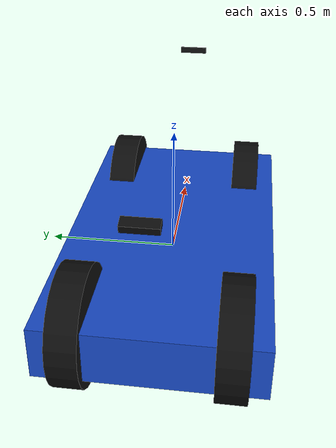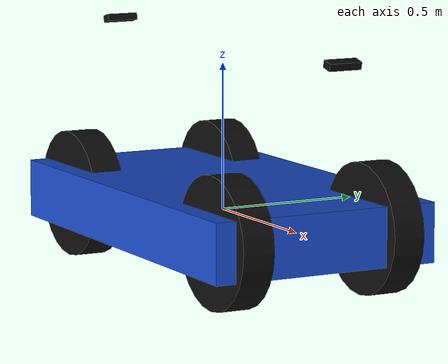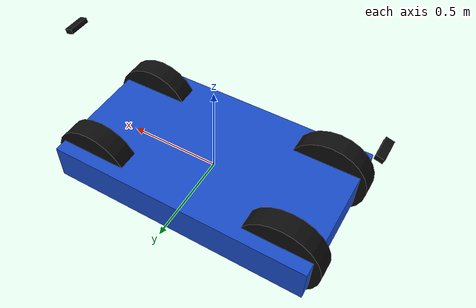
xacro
<?xml version="1.0"?>

<robot xmlns:xacro="http://www.ros.org/wiki/xacro"
       name="agricultural_skid_steer_robot">

  <!-- Robot geometry parameters                              -->

  <!-- Current measured geometry -->
  <!-- Track width may be updated after chassis modification -->

  <xacro:property name="wheelbase" value="1.07"/>
  <xacro:property name="track_width" value="0.55"/>
  <xacro:property name="wheel_radius" value="0.22"/>
  <xacro:property name="wheel_width" value="0.11"/>

  <!--
    Temporary chassis visualization dimensions.
    These are NOT the skid-steer kinematic dimensions.
    Update after final mechanical modification.
  -->
  <xacro:property name="base_length" value="1.41"/>
  <xacro:property name="base_width" value="0.80"/>
  <xacro:property name="base_height" value="0.20"/>

  <!-- Materials                                              -->

  <material name="blue">
    <color rgba="0.1 0.3 0.8 1.0"/>
  </material>

  <material name="black">
    <color rgba="0.05 0.05 0.05 1.0"/>
  </material>

  <!-- Base frames                                            -->

  <link name="base_footprint"/>

  <link name="base_link">

    <visual>
      <origin xyz="0 0 0" rpy="0 0 0"/>
      <geometry>
        <box size="${base_length} ${base_width} ${base_height}"/>
      </geometry>
      <material name="blue"/>
    </visual>

    <collision>
      <origin xyz="0 0 0" rpy="0 0 0"/>
      <geometry>
        <box size="${base_length} ${base_width} ${base_height}"/>
      </geometry>
    </collision>

    <inertial>
      <origin xyz="0 0 0" rpy="0 0 0"/>
      <mass value="20.0"/>

      <!-- Temporary inertia values -->
      <inertia
        ixx="1.0"
        ixy="0.0"
        ixz="0.0"
        iyy="2.5"
        iyz="0.0"
        izz="3.0"/>
    </inertial>

  </link>

  <joint name="base_footprint_joint" type="fixed">
    <parent link="base_link"/>
    <child link="base_footprint"/>
    <origin xyz="0 0 -0.715" rpy="0 0 0"/>
  </joint>

  <!-- Wheel macro                                            -->

  <xacro:macro name="wheel" params="prefix x y">

    <link name="${prefix}_wheel_link">

      <visual>
        <!-- Cylinder axis converted to wheel axle direction -->
        <origin xyz="0 0 0" rpy="1.57079632679 0 0"/>
        <geometry>
          <cylinder
            radius="${wheel_radius}"
            length="${wheel_width}"/>
        </geometry>
        <material name="black"/>
      </visual>

      <collision>
        <origin xyz="0 0 0" rpy="1.57079632679 0 0"/>
        <geometry>
          <cylinder
            radius="${wheel_radius}"
            length="${wheel_width}"/>
        </geometry>
      </collision>

      <inertial>
        <origin xyz="0 0 0" rpy="0 0 0"/>
        <mass value="2.0"/>

        <!-- Approximate wheel inertia -->
        <inertia
          ixx="0.03"
          ixy="0.0"
          ixz="0.0"
          iyy="0.05"
          iyz="0.0"
          izz="0.03"/>
      </inertial>

    </link>

    <!--
      Wheel has ONLY rolling rotation.
      No steering joint is present.
    -->

    <joint name="${prefix}_wheel_joint" type="fixed">

      <parent link="base_link"/>
      <child link="${prefix}_wheel_link"/>

      <origin
        xyz="${x} ${y} 0"
        rpy="0 0 0"/>

    </joint>

  </xacro:macro>

  <!-- Four wheels                                            -->

  <!--
    wheelbase   = 1.07 m  -> +/- 0.535 m
    track_width = 0.55 m  -> +/- 0.275 m
  -->

  <xacro:wheel
    prefix="front_left"
    x="${wheelbase / 2.0}"
    y="${track_width / 2.0}"/>

  <xacro:wheel
    prefix="front_right"
    x="${wheelbase / 2.0}"
    y="${-track_width / 2.0}"/>

  <xacro:wheel
    prefix="rear_left"
    x="${-wheelbase / 2.0}"
    y="${track_width / 2.0}"/>

  <xacro:wheel
    prefix="rear_right"
    x="${-wheelbase / 2.0}"
    y="${-track_width / 2.0}"/>

  <!-- Front OAK camera                                      -->

  <link name="front_camera_link">

    <visual>
      <origin xyz="0 0 0" rpy="0 0 0"/>
      <geometry>
        <box size="0.04 0.115 0.025"/>
      </geometry>
      <material name="black"/>
    </visual>

  </link>

  <joint name="front_camera_joint" type="fixed">

    <parent link="base_link"/>
    <child link="front_camera_link"/>

    <origin
      xyz="0.79 0 0.58"
      rpy="0 0.2618 0"/>

  </joint>

  <!-- Front OAK RIGHT physical camera frame                  -->

  <link name="front_camera_right_frame"/>

  <joint name="front_camera_right_joint" type="fixed">

    <parent link="front_camera_link"/>
    <child link="front_camera_right_frame"/>

    <origin
      xyz="0.0002830922 -0.0376089215 -0.0001362767"
      rpy="0.01093888 -0.01895032 0.00408157"/>

  </joint>

  <!-- Front OAK RIGHT optical frame                          -->

  <link name="front_camera_right_optical_frame"/>

  <joint name="front_camera_right_optical_joint" type="fixed">

    <parent link="front_camera_right_frame"/>
    <child link="front_camera_right_optical_frame"/>

    <origin
      xyz="0 0 0"
      rpy="-1.57079632679 0 -1.57079632679"/>

  </joint>

  <!-- Front OAK rectified RIGHT depth optical frame          -->

  <link name="front_camera_depth_optical_frame"/>

  <joint name="front_camera_depth_optical_joint" type="fixed">

    <parent link="front_camera_right_optical_frame"/>
    <child link="front_camera_depth_optical_frame"/>

    <origin
      xyz="0 0 0"
      rpy="0.00138700 -0.01342679 -0.00183043"/>

  </joint>

  <!-- Rear OAK camera                                       -->

  <link name="rear_camera_link">

    <visual>
      <origin xyz="0 0 0" rpy="0 0 0"/>
      <geometry>
        <box size="0.04 0.115 0.025"/>
      </geometry>
      <material name="black"/>
    </visual>

  </link>

  <joint name="rear_camera_joint" type="fixed">

    <parent link="base_link"/>
    <child link="rear_camera_link"/>

    <origin
      xyz="-0.79 0 0.58"
      rpy="0 0.2618 3.14159"/>

  </joint>
  <!-- Rear OAK RIGHT physical camera frame                   -->

  <link name="rear_camera_right_frame"/>

  <joint name="rear_camera_right_joint" type="fixed">

    <parent link="rear_camera_link"/>
    <child link="rear_camera_right_frame"/>

    <origin
      xyz="-0.000351802 -0.037616639 -0.000164001"
      rpy="0.04121807 -0.00155343 -0.03745893"/>

  </joint>

  <!-- Rear OAK RIGHT optical frame                           -->

  <link name="rear_camera_right_optical_frame"/>

  <joint name="rear_camera_right_optical_joint" type="fixed">

    <parent link="rear_camera_right_frame"/>
    <child link="rear_camera_right_optical_frame"/>

    <origin
      xyz="0 0 0"
      rpy="-1.57079632679 0 -1.57079632679"/>

  </joint>

  <!-- Rear OAK rectified RIGHT depth optical frame           -->

  <link name="rear_camera_depth_optical_frame"/>

  <joint name="rear_camera_depth_optical_joint" type="fixed">

    <parent link="rear_camera_right_optical_frame"/>
    <child link="rear_camera_depth_optical_frame"/>

    <origin
      xyz="0 0 0"
      rpy="-0.00022543 -0.02808973 -0.00469591"/>

  </joint>

  <!-- SBG IMU frame                                          -->

  <!--
    base_link is defined at the SBG IMU geometric center.
    Therefore imu_link is coincident with base_link.
  -->

  <link name="imu_link"/>

  <joint name="imu_joint" type="fixed">

    <parent link="base_link"/>
    <child link="imu_link"/>

    <origin
      xyz="0 0 0"
      rpy="0 0 0"/>

  </joint>

  <!-- SBG GNSS primary antenna ANT1                          -->

  <!--
    ANT1 / Primary GNSS antenna relative to the SBG center:

      X = +0.640 m forward
      Y =  0.000 m
      Z = +0.685 m upward

    ROS frame convention:
      X forward, Y left, Z up
  -->

  <link name="gps_link"/>

  <joint name="gps_joint" type="fixed">

    <parent link="base_link"/>
    <child link="gps_link"/>

    <origin
      xyz="0.640 0 0.685"
      rpy="0 0 0"/>

  </joint>

  <!-- Independent white GNSS antenna                         -->

  <!--
    Farm-ng white GNSS antenna relative to SBG/base_link:

      X = +0.480 m
      Y =  0.000 m
      Z = +0.645 m
  -->

  <link name="white_gnss_link"/>

  <joint name="white_gnss_joint" type="fixed">

    <parent link="base_link"/>
    <child link="white_gnss_link"/>

    <origin
      xyz="0.480 0 0.645"
      rpy="0 0 0"/>

  </joint>

  <!-- Velodyne VLP-16                                        -->

  <!--
    Velodyne center relative to SBG/base_link:

      X = +0.680 m
      Y = +0.150 m
      Z = +0.210 m

    Positive Y is robot left side.
  -->

  <link name="velodyne"/>

  <joint name="velodyne_joint" type="fixed">

    <parent link="base_link"/>
    <child link="velodyne"/>

    <origin
      xyz="0.680 0.150 0.210"
      rpy="0 0 -1.228"/>

  </joint>

</robot>
